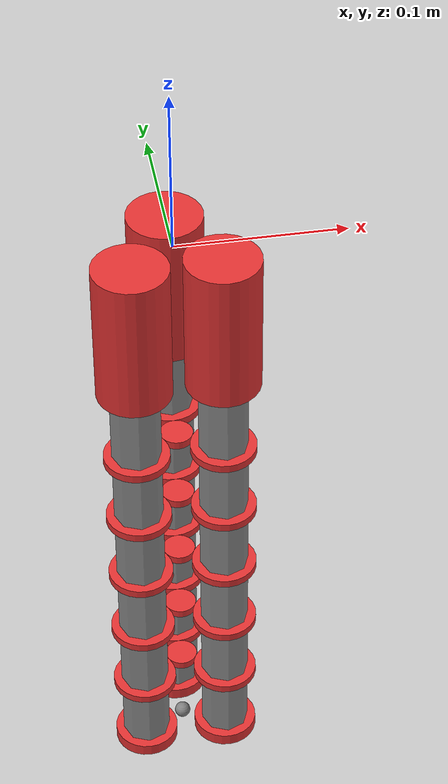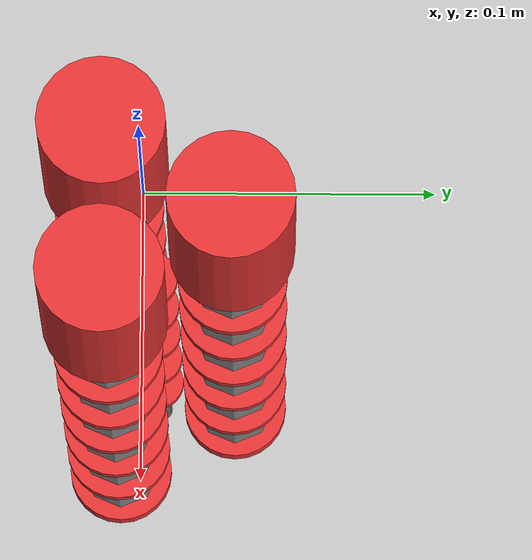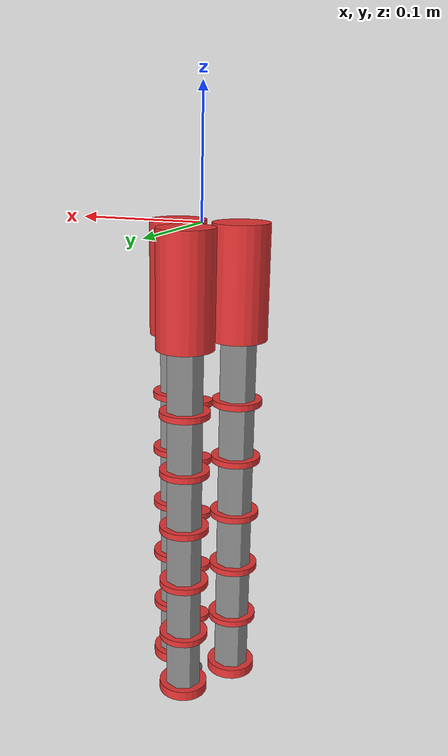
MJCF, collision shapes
<mujoco model="layer2">
    <compiler angle="degree" meshdir="./assets">
        <lengthrange mode="muscle" uselimit="true"/>
    </compiler>
    <asset>
        <material name="metal" rgba="0.58 0.58 0.58 1"/>
        <material name="silicone" rgba="0.1882 0.1882 0.1882 1"/>
        <material name="gray" rgba="0.4627 0.4627 0.4627 1"/>
        <material name="black" rgba="0.149 0.149 0.149 1"/>
        <material name="translucent_white_plastic" rgba="0.9 0.9 0.9 0.7" specular="0.8" shininess="0.6"/>
        <material name="matte_white_plastic" rgba="0.85 0.85 0.85 0.8" specular="0.2" shininess="0.1"/>
        <material name="acrylic_white_plastic" rgba="0.95 0.95 0.95 0.6" specular="0.9" shininess="0.9"/>
        <material name="clear_tube_plastic" rgba="1 1 1 0.35" specular="0.9" shininess="0.8" reflectance="0.2"/>
        <material name="matte_black_plastic" rgba="0.15 0.15 0.15 1" specular="0.1" shininess="0.1"/>
        <material name="polished_silver" rgba="0.8 0.8 0.8 1" specular="0.9" shininess="0.9"/>
        <mesh class="str" file="Cap.stl" />
        <mesh class="str" file="Mujoco_end.stl" />
        <mesh class="str" file="Mujoco_Fix_Ring.stl" />
    </asset>
    <default>
        <default class="hingeB">
            <joint stiffness="0.0755" damping="7" armature="0.005"/>
        </default>
        <default class="interZ">
            <joint type="slide" stiffness='5870' ref="-0.00120" armature="0.012" damping="7" frictionloss="0.2" />
        </default>
        <default class="secZ">
            <joint type="slide" stiffness='5870' ref="-0.00120" armature="0.035" damping="11" frictionloss="0.2"/>
        </default>
        <default class="str">
            <mesh scale="0.001 0.001 0.001"/>
            <general biastype="affine"/>
        </default>
        <default class="vis">
            <geom contype="0" conaffinity="0" density="0" group="0"/>
        </default>
        <default class="col">
            <geom contype="1" conaffinity="1" group="3" rgba="0.9 0.2 0.2 0.25"/>
        </default>
    </default>
    <worldbody>
        <body name='layer_core'>
            <inertial pos="0.00 0.00 -0.047" quat="1 0 0 0" mass="0.452" diaginertia="6.975e-4 6.975e-4 5.153e-4"/>
            <geom class="vis" type="mesh" mesh="Mujoco_end" pos="0 0 0" euler= '180 0 0 ' material = 'matte_black_plastic'/>
            <geom class="col" name="Mujoco_end_col_1" type="cylinder" size="0.0225 0.0451" pos="0 0.03 -0.0451"/>
            <geom class="col" name="Mujoco_end_col_2" type="cylinder" size="0.0225 0.0451" pos="0.025981 -0.015 -0.0451"/>
            <geom class="col" name="Mujoco_end_col_3" type="cylinder" size="0.0225 0.0451" pos="-0.025981 -0.015 -0.0451"/>
            <site name= "imu_site_01" pos="0 0.03 -0.0402 "/>
            <site name= "imu_site_02" pos="0.025981 -0.015 -0.0402 "/>
            <site name= "imu_site_03" pos="-0.025981 -0.015 -0.0402 "/>
            <site name="layer01" pos="0 0.03 -0.0902 "/>
            <site name="layer11" pos="0.025981 -0.015 -0.0902 "/>
            <site name="layer21" pos="-0.025981 -0.015 -0.0902 "/>
            <body name='sec_1' pos= '0 0 -0.1386' euler='180 0 0'>
                <inertial pos="0.00 0.00 0.0025" quat="1 0 0 0" mass="0.012" diaginertia="4.867e-6 4.867e-6 9.673e-6"/>
                <geom class="vis" type="mesh" mesh="Mujoco_Fix_Ring" pos="0 0 0" material = 'matte_black_plastic'/>
                <geom class="col" name="Mujoco_Fix_Ring_col_1_1" type="cylinder" size="0.02 0.0025" pos="0 -0.03 0.0025 "/>
                <geom class="col" name="Mujoco_Fix_Ring_col_1_2" type="cylinder" size="0.02 0.0025" pos="0.025981 0.015 0.0025 "/>
                <geom class="col" name="Mujoco_Fix_Ring_col_1_3" type="cylinder" size="0.02 0.0025" pos="-0.025981 0.015 0.0025 "/>
                <geom class="col" name="Mujoco_Fix_Ring_col_1_4" type="cylinder" size="0.01 0.0025" pos="0 0 0.0025 "/>
                <joint name="sec_1_joint_x" class="hingeB" type="hinge" axis="1 0 0" pos="0 0 -0.0242  " limited="true" range="-50 50"/>
                <joint name="sec_1_joint_y" class="hingeB" type="hinge" axis="0 1 0" pos="0 0 -0.0242  " limited="true" range="-50 50"/>
                <joint name="sec_1_joint_z" class='secZ' type="slide" axis="0 0 1" pos="0 0 -0.0242  " limited="true" range="-0.023 0.001" />
                <site name="layer02" pos="0 -0.03 0.005 "/>
                <site name="layer12" pos="0.025981 0.015 0.005 "/>
                <site name="layer22" pos="-0.025981 0.015 0.005 "/>
                <body name='sec_2' pos= '0 0 0.0484' euler='0 0 0'>
                    <inertial pos="0.00 0.00 0.0025" quat="1 0 0 0" mass="0.012" diaginertia="4.867e-6 4.867e-6 9.673e-6"/>
                    <geom class="vis" type="mesh" mesh="Mujoco_Fix_Ring" pos="0 0 0" material = 'matte_black_plastic'/>
                    <geom class="col" name="Mujoco_Fix_Ring_col_2_1" type="cylinder" size="0.02 0.0025" pos="0 -0.03 0.0025 "/>
                    <geom class="col" name="Mujoco_Fix_Ring_col_2_2" type="cylinder" size="0.02 0.0025" pos="0.025981 0.015 0.0025 "/>
                    <geom class="col" name="Mujoco_Fix_Ring_col_2_3" type="cylinder" size="0.02 0.0025" pos="-0.025981 0.015 0.0025 "/>
                    <geom class="col" name="Mujoco_Fix_Ring_col_2_4" type="cylinder" size="0.01 0.0025" pos="0 0 0.0025 "/>
                    <joint name="sec_2_joint_x" class="hingeB" type="hinge" axis="1 0 0" pos="0 0 -0.0242  " limited="true" range="-50 50"/>
                    <joint name="sec_2_joint_y" class="hingeB" type="hinge" axis="0 1 0" pos="0 0 -0.0242  " limited="true" range="-50 50"/>
                    <joint name="sec_2_joint_z" class='secZ' type="slide" axis="0 0 1" pos="0 0 -0.0242  " limited="true" range="-0.023 0.001" />
                    <site name="layer03" pos="0 -0.03 0.005 "/>
                    <site name="layer13" pos="0.025981 0.015 0.005 "/>
                    <site name="layer23" pos="-0.025981 0.015 0.005 "/>
                    <body name='sec_3' pos= '0 0 0.0484' euler='0 0 0'>
                        <inertial pos="0.00 0.00 0.0025" quat="1 0 0 0" mass="0.012" diaginertia="4.867e-6 4.867e-6 9.673e-6"/>
                        <geom class="vis" type="mesh" mesh="Mujoco_Fix_Ring" pos="0 0 0" material = 'matte_black_plastic'/>
                        <geom class="col" name="Mujoco_Fix_Ring_col_3_1" type="cylinder" size="0.02 0.0025" pos="0 -0.03 0.0025 "/>
                        <geom class="col" name="Mujoco_Fix_Ring_col_3_2" type="cylinder" size="0.02 0.0025" pos="0.025981 0.015 0.0025 "/>
                        <geom class="col" name="Mujoco_Fix_Ring_col_3_3" type="cylinder" size="0.02 0.0025" pos="-0.025981 0.015 0.0025 "/>
                        <geom class="col" name="Mujoco_Fix_Ring_col_3_4" type="cylinder" size="0.01 0.0025" pos="0 0 0.0025 "/>
                        <joint name="sec_3_joint_x" class="hingeB" type="hinge" axis="1 0 0" pos="0 0 -0.0242  " limited="true" range="-50 50"/>
                        <joint name="sec_3_joint_y" class="hingeB" type="hinge" axis="0 1 0" pos="0 0 -0.0242  " limited="true" range="-50 50"/>
                        <joint name="sec_3_joint_z" class='secZ' type="slide" axis="0 0 1" pos="0 0 -0.0242  " limited="true" range="-0.023 0.001" />
                        <site name="layer04" pos="0 -0.03 0.005 "/>
                        <site name="layer14" pos="0.025981 0.015 0.005 "/>
                        <site name="layer24" pos="-0.025981 0.015 0.005 "/>

                        <body name='sec_4' pos= '0 0 0.0484' euler='0 0 0'>
                            <inertial pos="0.00 0.00 0.0025" quat="1 0 0 0" mass="0.012" diaginertia="4.867e-6 4.867e-6 9.673e-6"/>
                            <geom class="vis" type="mesh" mesh="Mujoco_Fix_Ring" pos="0 0 0" material = 'matte_black_plastic'/>
                            <geom class="col" name="Mujoco_Fix_Ring_col_4_1" type="cylinder" size="0.02 0.0025" pos="0 -0.03 0.0025 "/>
                            <geom class="col" name="Mujoco_Fix_Ring_col_4_2" type="cylinder" size="0.02 0.0025" pos="0.025981 0.015 0.0025 "/>
                            <geom class="col" name="Mujoco_Fix_Ring_col_4_3" type="cylinder" size="0.02 0.0025" pos="-0.025981 0.015 0.0025 "/>
                            <geom class="col" name="Mujoco_Fix_Ring_col_4_4" type="cylinder" size="0.01 0.0025" pos="0 0 0.0025 "/>
                            <joint name="sec_4_joint_x" class="hingeB" type="hinge" axis="1 0 0" pos="0 0 -0.0242  " limited="true" range="-50 50"/>
                            <joint name="sec_4_joint_y" class="hingeB" type="hinge" axis="0 1 0" pos="0 0 -0.0242  " limited="true" range="-50 50"/>
                            <joint name="sec_4_joint_z" class='secZ' type="slide" axis="0 0 1" pos="0 0 -0.0242  " limited="true" range="-0.023 0.001" />
                            <site name="layer05" pos="0 -0.03 0.005 "/>
                            <site name="layer15" pos="0.025981 0.015 0.005 "/>
                            <site name="layer25" pos="-0.025981 0.015 0.005 "/>

                            <body name='sec_5' pos= '0 0 0.0484' euler='0 0 0'>
                                <inertial pos="0.00 0.00 0.0025" quat="1 0 0 0" mass="0.012" diaginertia="4.867e-6 4.867e-6 9.673e-6"/>
                                <geom class="vis" type="mesh" mesh="Mujoco_Fix_Ring" pos="0 0 0" material = 'matte_black_plastic'/>
                                <geom class="col" name="Mujoco_Fix_Ring_col_5_1" type="cylinder" size="0.02 0.0025" pos="0 -0.03 0.0025 "/>
                                <geom class="col" name="Mujoco_Fix_Ring_col_5_2" type="cylinder" size="0.02 0.0025" pos="0.025981 0.015 0.0025 "/>
                                <geom class="col" name="Mujoco_Fix_Ring_col_5_3" type="cylinder" size="0.02 0.0025" pos="-0.025981 0.015 0.0025 "/>
                                <geom class="col" name="Mujoco_Fix_Ring_col_5_4" type="cylinder" size="0.01 0.0025" pos="0 0 0.0025 "/>
                                <joint name="sec_5_joint_x" class="hingeB" type="hinge" axis="1 0 0" pos="0 0 -0.0242" limited="true" range="-50 50"/>
                                <joint name="sec_5_joint_y" class="hingeB" type="hinge" axis="0 1 0" pos="0 0 -0.0242" limited="true" range="-50 50"/>
                                <joint name="sec_5_joint_z" class='secZ' type="slide" axis="0 0 1" pos="0 0 -0.0242" limited="true" range="-0.023 0.001" />
                                <site name="layer06" pos="0 -0.03 0.005 "/>
                                <site name="layer16" pos="0.025981 0.015 0.005 "/>
                                <site name="layer26" pos="-0.025981 0.015 0.005 "/>

                                <body name='sec_6' pos= '0 0 0.0484' euler='0 0 0'>
                                    <inertial pos="0.00 0.00 0.0045" quat="1 0 0 0" mass="0.036" diaginertia="2.092e-6 2.092e-6 4.135e-6"/>
                                    <geom class="vis" type="mesh" mesh="Cap" pos="0 0 0"  material = 'matte_black_plastic'/>
                                    <geom class="col" name="Cap_1" type="cylinder" size="0.02 0.004" pos="0 -0.03 0.004 "/>
                                    <geom class="col" name="Cap_2" type="cylinder" size="0.02 0.004" pos="0.025981 0.015 0.004 "/>
                                    <geom class="col" name="Cap_3" type="cylinder" size="0.02 0.004" pos="-0.025981 0.015 0.004 "/>
                                    <joint name="sec_6_joint_x" class="hingeB" type="hinge" axis="1 0 0" pos="0 0 -0.0242  " limited="true" range="-50 50"/>
                                    <joint name="sec_6_joint_y" class="hingeB" type="hinge" axis="0 1 0" pos="0 0 -0.0242  " limited="true" range="-50 50"/>
                                    <joint name="sec_6_joint_z" class='secZ' type="slide" axis="0 0 1" pos="0 0 -0.0242  " limited="true" range="-0.010 0.001" />
                                    <site name="layer07" pos="0 -0.03 0 "/>
                                    <site name="layer17" pos="0.025981 0.015 0 "/>
                                    <site name="layer27" pos="-0.025981 0.015 0 "/>
                                    <body name="mount" pos= '0 0 0.008' euler='180 0 0 '>
                                        <site name="end_effector" pos="0 0 0 "/>
                                    </body>
                                </body>
                            </body>
                        </body>
                    </body>
                </body>
            </body>
        </body>
    </worldbody>
    <tendon >
        <spatial name="layer00" range=".15 .33" limited="true" width=".015" rgba="0.55 0.55 0.55 1" stiffness='128' damping= '2'>
            <site site="layer01"/>
            <site site="layer02"/>
            <site site="layer03"/>
            <site site="layer04"/>
            <site site="layer05"/>
            <site site="layer06"/>
            <site site="layer07"/>
        </spatial>
        <spatial name="layer01" range=".15 .33" limited="true" width=".015" rgba="0.55 0.55 0.55 1" stiffness='128' damping= '2'>
            <site site="layer11"/>
            <site site="layer12"/>
            <site site="layer13"/>
            <site site="layer14"/>
            <site site="layer15"/>
            <site site="layer16"/>
            <site site="layer17"/>
        </spatial>
        <spatial name="layer02" range=".15 .33" limited="true" width=".015" rgba="0.55 0.55 0.55 1" stiffness='128' damping= '2'>
            <site site="layer21"/>
            <site site="layer22"/>
            <site site="layer23"/>
            <site site="layer24"/>
            <site site="layer25"/>
            <site site="layer26"/>
            <site site="layer27"/>
        </spatial>
    </tendon>
    <equality>
        <joint joint1="sec_1_joint_x" joint2="sec_2_joint_x" polycoef="0 1 0 0 0"/>
        <joint joint1="sec_1_joint_y" joint2="sec_2_joint_y" polycoef="0 1 0 0 0"/>
        <joint joint1="sec_2_joint_x" joint2="sec_3_joint_x" polycoef="0 1 0 0 0"/>
        <joint joint1="sec_2_joint_y" joint2="sec_3_joint_y" polycoef="0 1 0 0 0"/>
        <joint joint1="sec_3_joint_x" joint2="sec_4_joint_x" polycoef="0 1 0 0 0"/>
        <joint joint1="sec_3_joint_y" joint2="sec_4_joint_y" polycoef="0 1 0 0 0"/>
        <joint joint1="sec_4_joint_x" joint2="sec_5_joint_x" polycoef="0 1 0 0 0"/>
        <joint joint1="sec_4_joint_y" joint2="sec_5_joint_y" polycoef="0 1 0 0 0"/>
        <joint joint1="sec_5_joint_x" joint2="sec_6_joint_x" polycoef="0 1 0 0 0"/>
        <joint joint1="sec_5_joint_y" joint2="sec_6_joint_y" polycoef="0 1 0 0 0"/>
    </equality>
    <contact>
    <!-- 仅举例：依次禁掉相邻段之间的碰撞（x/y/z 全部几何都不再互撞） -->
    <exclude body1="sec_1" body2="sec_2"/>
    <exclude body1="sec_2" body2="sec_3"/>
    <exclude body1="sec_3" body2="sec_4"/>
    <exclude body1="sec_4" body2="sec_5"/>
    <exclude body1="sec_5" body2="sec_6"/>
    </contact>
    <sensor>
        <gyro site="imu_site_01"/>
        <accelerometer site="imu_site_01"/>
        <gyro site="imu_site_02"/>
        <accelerometer site="imu_site_02"/>
        <gyro site="imu_site_03"/>
        <accelerometer site="imu_site_03"/>
    </sensor>
</mujoco>
